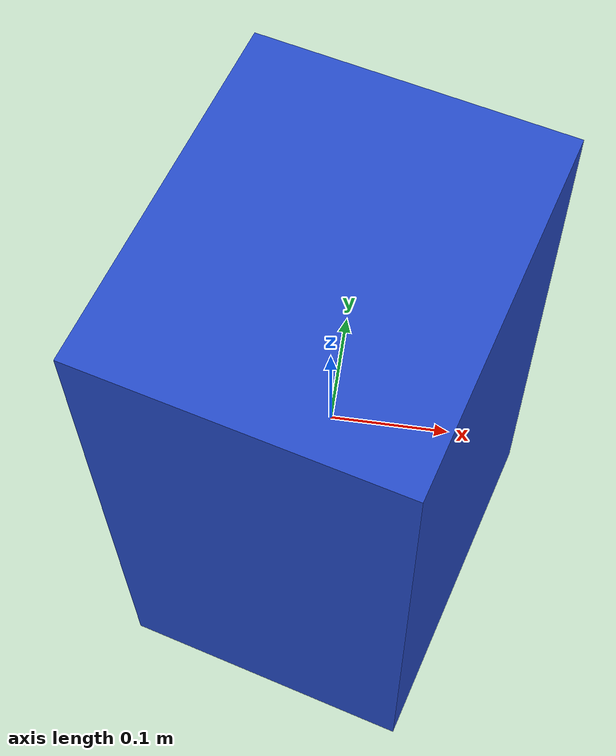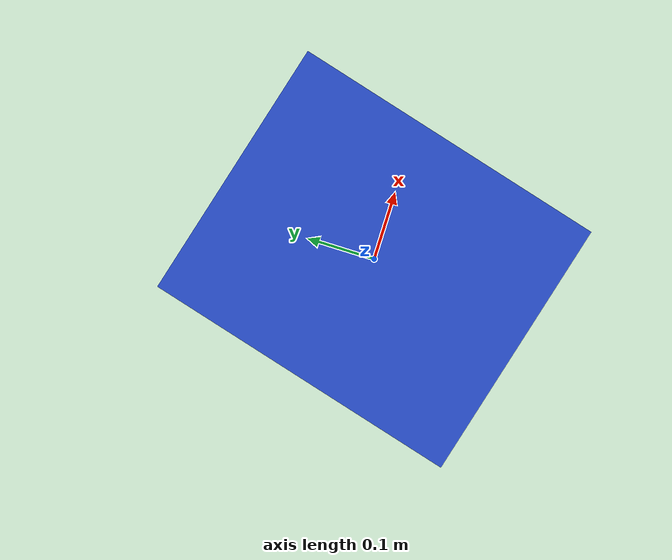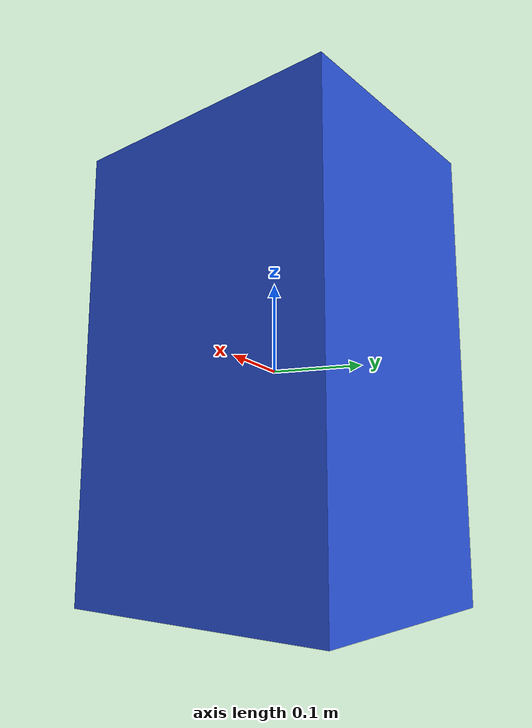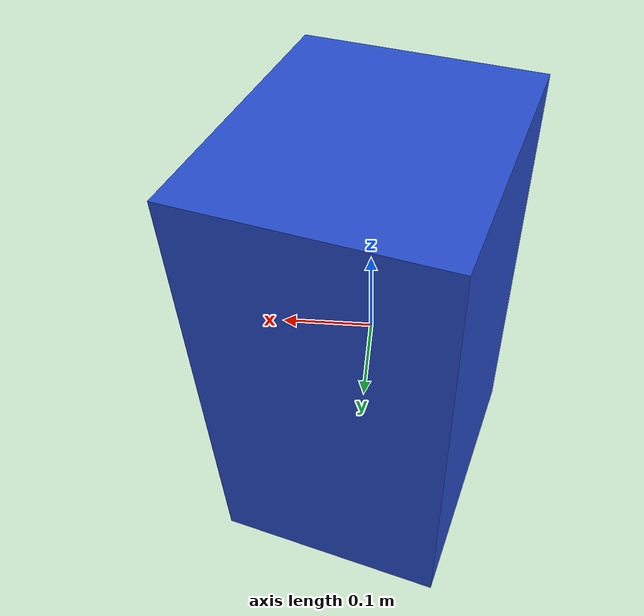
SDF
<sdf version="1.6"><model name="model_12"><link name="link"><pose>0 0 0 0 0 1.304861220590369</pose><gravity>true</gravity><static>true</static><inertial><mass>1.0</mass><inertia><ixx>0.16666</ixx><ixy>0</ixy><ixz>0</ixz><iyy>0.16666</iyy><iyz>0</iyz><izz>0.16666</izz></inertia></inertial><collision name="collision"><geometry><box><size>0.31949521299217676 0.2654043609148916 0.5</size></box></geometry></collision><visual name="visual"><geometry><box><size>0.31949521299217676 0.2654043609148916 0.5</size></box></geometry><material><script><name>Gazebo/Blue</name><uri>file://media/materials/scripts/gazebo.material</uri></script></material></visual></link></model></sdf>
